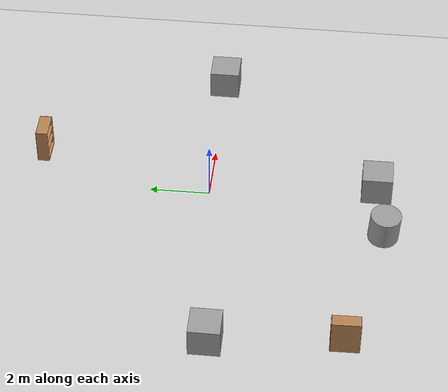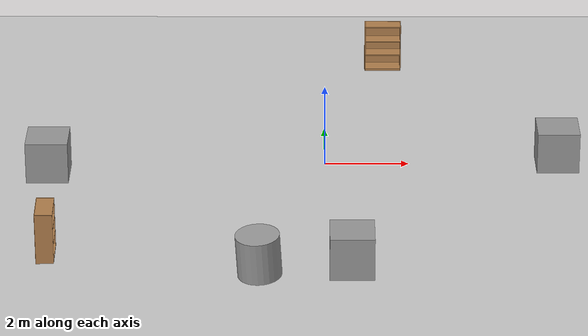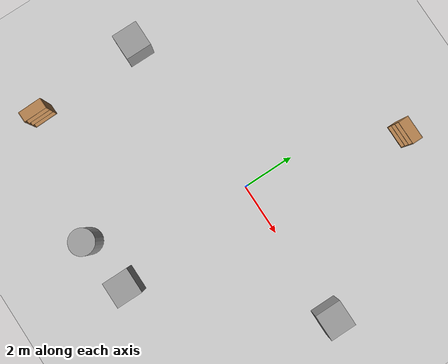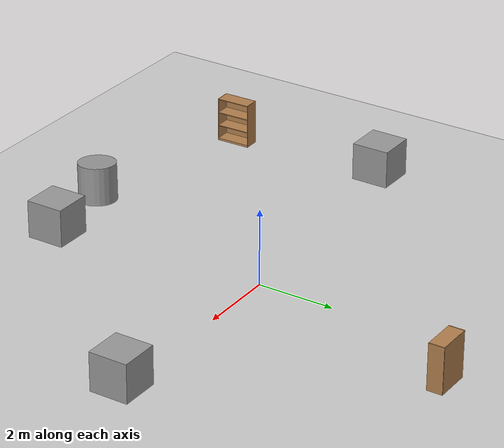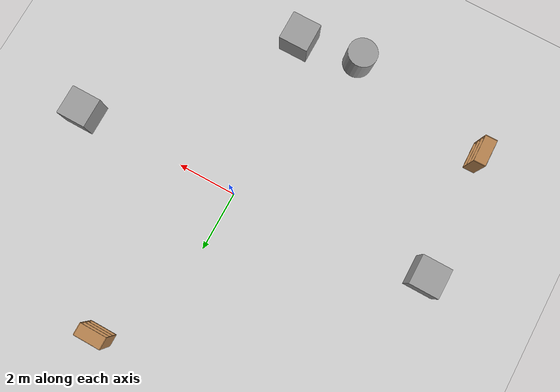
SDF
<sdf version="1.4">
 <world name="default">
  <light name="sun" type="directional">
   <pose>0 0 10 0 -0 0</pose>
   <diffuse>0.8 0.8 0.8 1</diffuse>
   <specular>0.2 0.2 0.2 1</specular>
   <attenuation>
    <range>1000</range>
    <constant>0.9</constant>
    <linear>0.01</linear>
    <quadratic>0.001</quadratic>
   </attenuation>
   <direction>-0.5 0.1 -0.9</direction>
  </light>
  <model name="ground_plane">
   <static>1</static>
   <link name="link">
    <collision name="collision">
     <geometry><plane><normal>0 0 1</normal><size>100 100</size></plane></geometry>
     <surface><friction><ode><mu>100</mu><mu2>50</mu2></ode></friction></surface>
    </collision>
    <visual name="visual">
     <cast_shadows>0</cast_shadows>
     <geometry><plane><normal>0 0 1</normal><size>100 100</size></plane></geometry>
     <material>
      <script><uri>file://media/materials/scripts/gazebo.material</uri><name>Gazebo/Grey</name></script>
     </material>
    </visual>
    <velocity_decay><linear>0</linear><angular>0</angular></velocity_decay>
   </link>
  </model>
  <physics type="ode">
   <max_step_size>0.001</max_step_size>
   <real_time_factor>1</real_time_factor>
   <real_time_update_rate>1000</real_time_update_rate>
   <gravity>0 0 -9.8</gravity>
  </physics>
  <scene><ambient>0.4 0.4 0.4 1</ambient><background>0.7 0.7 0.7 1</background><shadows>1</shadows></scene>
  <spherical_coordinates>
   <surface_model>EARTH_WGS84</surface_model>
   <latitude_deg>0</latitude_deg>
   <longitude_deg>0</longitude_deg>
   <elevation>0</elevation>
   <heading_deg>0</heading_deg>
  </spherical_coordinates>
  <model name="bookshelf">
   <static>1</static>
   <link name="link">
    <inertial><mass>1</mass></inertial>
    <collision name="back">
     <pose>0 0.005 0.6 0 -0 0</pose>
     <geometry><box><size>0.9 0.01 1.2</size></box></geometry>
    </collision>
    <visual name="visual1">
     <pose>0 0.005 0.6 0 -0 0</pose>
     <geometry><box><size>0.9 0.01 1.2</size></box></geometry>
     <material>
      <script><uri>file://media/materials/scripts/gazebo.material</uri><name>Gazebo/Wood</name></script>
     </material>
    </visual>
    <collision name="left_side">
     <pose>0.45 -0.195 0.6 0 -0 0</pose>
     <geometry><box><size>0.02 0.4 1.2</size></box></geometry>
    </collision>
    <visual name="visual2">
     <pose>0.45 -0.195 0.6 0 -0 0</pose>
     <geometry><box><size>0.02 0.4 1.2</size></box></geometry>
     <material>
      <script><uri>file://media/materials/scripts/gazebo.material</uri><name>Gazebo/Wood</name></script>
     </material>
    </visual>
    <collision name="right_side">
     <pose>-0.45 -0.195 0.6 0 -0 0</pose>
     <geometry><box><size>0.02 0.4 1.2</size></box></geometry>
    </collision>
    <visual name="visual3">
     <pose>-0.45 -0.195 0.6 0 -0 0</pose>
     <geometry><box><size>0.02 0.4 1.2</size></box></geometry>
     <material>
      <script><uri>file://media/materials/scripts/gazebo.material</uri><name>Gazebo/Wood</name></script>
     </material>
    </visual>
    <collision name="bottom">
     <pose>0 -0.195 0.03 0 -0 0</pose>
     <geometry><box><size>0.88 0.4 0.06</size></box></geometry>
    </collision>
    <visual name="visual4">
     <pose>0 -0.195 0.03 0 -0 0</pose>
     <geometry><box><size>0.88 0.4 0.06</size></box></geometry>
     <material>
      <script><uri>file://media/materials/scripts/gazebo.material</uri><name>Gazebo/Wood</name></script>
     </material>
    </visual>
    <collision name="top">
     <pose>0 -0.195 1.19 0 -0 0</pose>
     <geometry><box><size>0.88 0.4 0.02</size></box></geometry>
    </collision>
    <visual name="visual5">
     <pose>0 -0.195 1.19 0 -0 0</pose>
     <geometry><box><size>0.88 0.4 0.02</size></box></geometry>
     <material>
      <script><uri>file://media/materials/scripts/gazebo.material</uri><name>Gazebo/Wood</name></script>
     </material>
    </visual>
    <collision name="low_shelf">
     <pose>0 -0.195 0.43 0 -0 0</pose>
     <geometry><box><size>0.88 0.4 0.02</size></box></geometry>
    </collision>
    <visual name="visual6">
     <pose>0 -0.195 0.43 0 -0 0</pose>
     <geometry><box><size>0.88 0.4 0.02</size></box></geometry>
     <material>
      <script><uri>file://media/materials/scripts/gazebo.material</uri><name>Gazebo/Wood</name></script>
     </material>
    </visual>
    <collision name="high_shelf">
     <pose>0 -0.195 0.8 0 -0 0</pose>
     <geometry><box><size>0.88 0.4 0.02</size></box></geometry>
    </collision>
    <visual name="visual7">
     <pose>0 -0.195 0.8 0 -0 0</pose>
     <geometry><box><size>0.88 0.4 0.02</size></box></geometry>
     <material>
      <script><uri>file://media/materials/scripts/gazebo.material</uri><name>Gazebo/Wood</name></script>
     </material>
    </visual>
    <velocity_decay><linear>0</linear><angular>0</angular></velocity_decay>
   </link>
   <pose>1.49712 6 0 0 -0 0</pose>
  </model>
  <model name="unit_box_1">
   <pose>5.54311 0 0.5 0 -0 0</pose>
   <link name="link">
    <inertial>
     <mass>1</mass>
     <inertia><ixx>1</ixx><ixy>0</ixy><ixz>0</ixz><iyy>1</iyy><iyz>0</iyz><izz>1</izz></inertia>
    </inertial>
    <collision name="collision"><geometry><box><size>1 1 1</size></box></geometry></collision>
    <visual name="visual">
     <geometry><box><size>1 1 1</size></box></geometry>
     <material>
      <script><uri>file://media/materials/scripts/gazebo.material</uri><name>Gazebo/Grey</name></script>
     </material>
    </visual>
    <velocity_decay><linear>0</linear><angular>0</angular></velocity_decay>
   </link>
   <static>0</static>
  </model>
  <model name="unit_box_3">
   <pose>0.590876 -5.54164 0.5 0 -0 0</pose>
   <link name="link">
    <inertial>
     <mass>1</mass>
     <inertia><ixx>1</ixx><ixy>0</ixy><ixz>0</ixz><iyy>1</iyy><iyz>0</iyz><izz>1</izz></inertia>
    </inertial>
    <collision name="collision"><geometry><box><size>1 1 1</size></box></geometry></collision>
    <visual name="visual">
     <geometry><box><size>1 1 1</size></box></geometry>
     <material>
      <script><uri>file://media/materials/scripts/gazebo.material</uri><name>Gazebo/Grey</name></script>
     </material>
    </visual>
    <velocity_decay><linear>0</linear><angular>0</angular></velocity_decay>
   </link>
   <static>0</static>
  </model>
  <model name="unit_cylinder_1">
   <pose>-1.48577 -5.83731 0.536635 0.039877 -0.065013 0.201055</pose>
   <link name="link">
    <inertial>
     <mass>1</mass>
     <inertia><ixx>1</ixx><ixy>0</ixy><ixz>0</ixz><iyy>1</iyy><iyz>0</iyz><izz>1</izz></inertia>
    </inertial>
    <collision name="collision">
     <geometry><cylinder><radius>0.5</radius><length>1</length></cylinder></geometry>
    </collision>
    <visual name="visual">
     <geometry><cylinder><radius>0.5</radius><length>1</length></cylinder></geometry>
     <material>
      <script><uri>file://media/materials/scripts/gazebo.material</uri><name>Gazebo/Grey</name></script>
     </material>
    </visual>
    <velocity_decay><linear>0</linear><angular>0</angular></velocity_decay>
   </link>
   <static>0</static>
  </model>
  <model name="bookshelf_0">
   <static>1</static>
   <link name="link">
    <inertial><mass>1</mass></inertial>
    <collision name="back">
     <pose>0 0.005 0.6 0 -0 0</pose>
     <geometry><box><size>0.9 0.01 1.2</size></box></geometry>
    </collision>
    <visual name="visual1">
     <pose>0 0.005 0.6 0 -0 0</pose>
     <geometry><box><size>0.9 0.01 1.2</size></box></geometry>
     <material>
      <script><uri>file://media/materials/scripts/gazebo.material</uri><name>Gazebo/Wood</name></script>
     </material>
    </visual>
    <collision name="left_side">
     <pose>0.45 -0.195 0.6 0 -0 0</pose>
     <geometry><box><size>0.02 0.4 1.2</size></box></geometry>
    </collision>
    <visual name="visual2">
     <pose>0.45 -0.195 0.6 0 -0 0</pose>
     <geometry><box><size>0.02 0.4 1.2</size></box></geometry>
     <material>
      <script><uri>file://media/materials/scripts/gazebo.material</uri><name>Gazebo/Wood</name></script>
     </material>
    </visual>
    <collision name="right_side">
     <pose>-0.45 -0.195 0.6 0 -0 0</pose>
     <geometry><box><size>0.02 0.4 1.2</size></box></geometry>
    </collision>
    <visual name="visual3">
     <pose>-0.45 -0.195 0.6 0 -0 0</pose>
     <geometry><box><size>0.02 0.4 1.2</size></box></geometry>
     <material>
      <script><uri>file://media/materials/scripts/gazebo.material</uri><name>Gazebo/Wood</name></script>
     </material>
    </visual>
    <collision name="bottom">
     <pose>0 -0.195 0.03 0 -0 0</pose>
     <geometry><box><size>0.88 0.4 0.06</size></box></geometry>
    </collision>
    <visual name="visual4">
     <pose>0 -0.195 0.03 0 -0 0</pose>
     <geometry><box><size>0.88 0.4 0.06</size></box></geometry>
     <material>
      <script><uri>file://media/materials/scripts/gazebo.material</uri><name>Gazebo/Wood</name></script>
     </material>
    </visual>
    <collision name="top">
     <pose>0 -0.195 1.19 0 -0 0</pose>
     <geometry><box><size>0.88 0.4 0.02</size></box></geometry>
    </collision>
    <visual name="visual5">
     <pose>0 -0.195 1.19 0 -0 0</pose>
     <geometry><box><size>0.88 0.4 0.02</size></box></geometry>
     <material>
      <script><uri>file://media/materials/scripts/gazebo.material</uri><name>Gazebo/Wood</name></script>
     </material>
    </visual>
    <collision name="low_shelf">
     <pose>0 -0.195 0.43 0 -0 0</pose>
     <geometry><box><size>0.88 0.4 0.02</size></box></geometry>
    </collision>
    <visual name="visual6">
     <pose>0 -0.195 0.43 0 -0 0</pose>
     <geometry><box><size>0.88 0.4 0.02</size></box></geometry>
     <material>
      <script><uri>file://media/materials/scripts/gazebo.material</uri><name>Gazebo/Wood</name></script>
     </material>
    </visual>
    <collision name="high_shelf">
     <pose>0 -0.195 0.8 0 -0 0</pose>
     <geometry><box><size>0.88 0.4 0.02</size></box></geometry>
    </collision>
    <visual name="visual7">
     <pose>0 -0.195 0.8 0 -0 0</pose>
     <geometry><box><size>0.88 0.4 0.02</size></box></geometry>
     <material>
      <script><uri>file://media/materials/scripts/gazebo.material</uri><name>Gazebo/Wood</name></script>
     </material>
    </visual>
    <velocity_decay><linear>0</linear><angular>0</angular></velocity_decay>
   </link>
   <pose>-6.48293 -4.80306 0 0 -0 1.5934</pose>
  </model>
  <model name="unit_box_4">
   <pose>-6.55665 -0.57547 0.5 0 -0 0</pose>
   <link name="link">
    <inertial>
     <mass>1</mass>
     <inertia><ixx>1</ixx><ixy>0</ixy><ixz>0</ixz><iyy>1</iyy><iyz>0</iyz><izz>1</izz></inertia>
    </inertial>
    <collision name="collision"><geometry><box><size>1 1 1</size></box></geometry></collision>
    <visual name="visual">
     <geometry><box><size>1 1 1</size></box></geometry>
     <material>
      <script><uri>file://media/materials/scripts/gazebo.material</uri><name>Gazebo/Grey</name></script>
     </material>
    </visual>
    <velocity_decay><linear>0</linear><angular>0</angular></velocity_decay>
   </link>
   <static>0</static>
  </model>
 </world>
</sdf>
